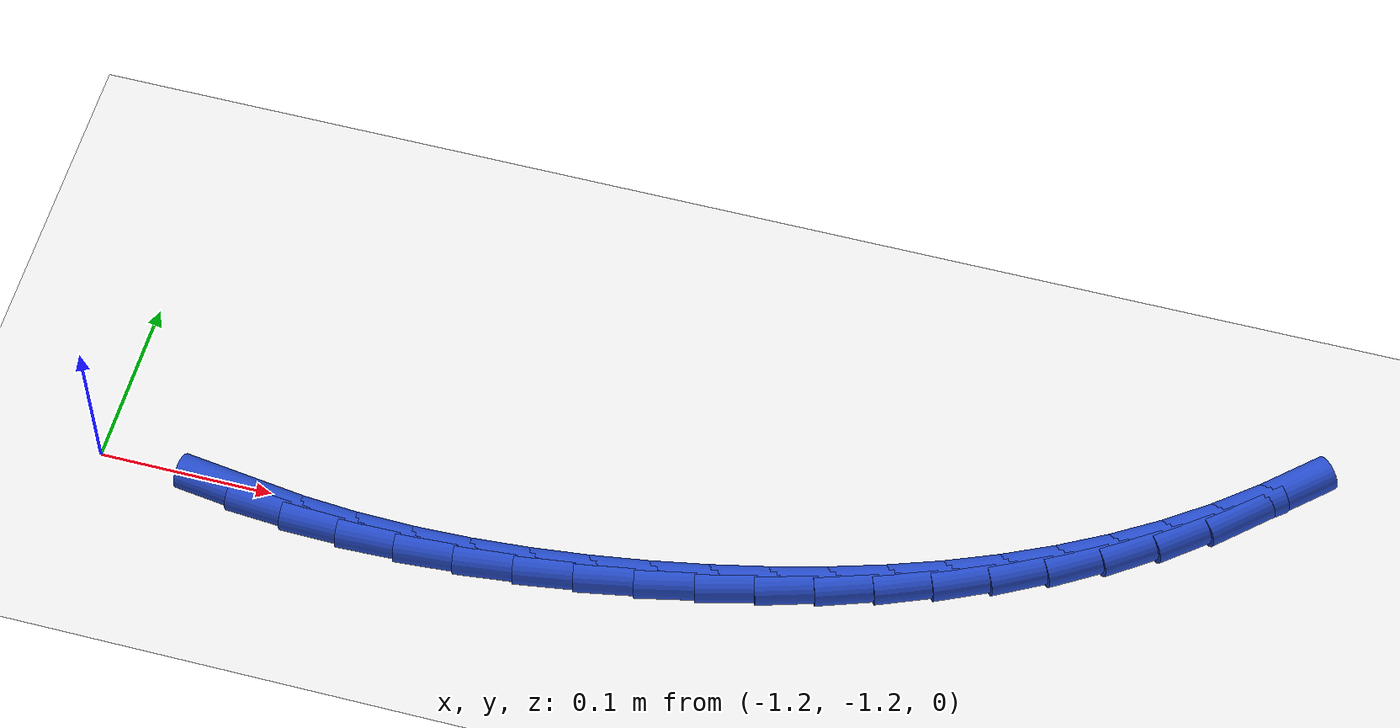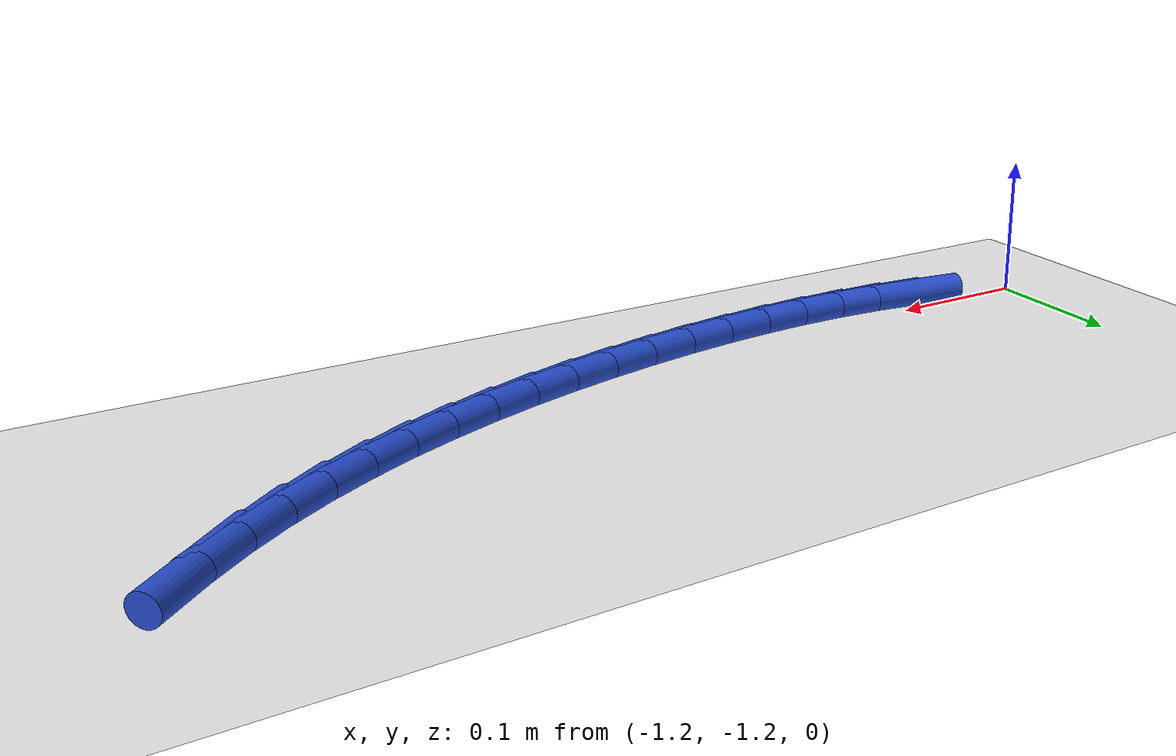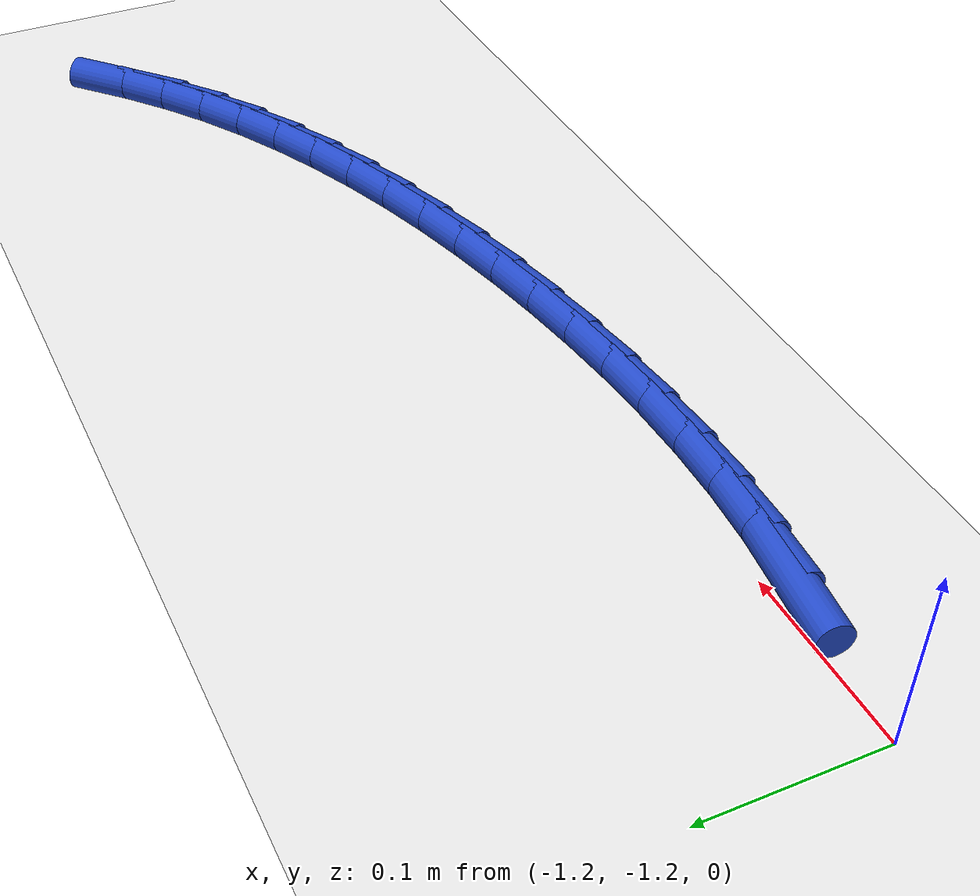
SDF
<sdf version="1.6">
 <world name="default">
  <model name="ground_plane">
   <static>1</static>
   <link name="link">
    <collision name="collision">
     <geometry><plane><normal>0 0 1</normal><size>100 100</size></plane></geometry>
     <surface><friction><ode><mu>100</mu><mu2>50</mu2></ode></friction></surface>
    </collision>
    <visual name="visual">
     <cast_shadows>0</cast_shadows>
     <geometry><plane><normal>0 0 1</normal><size>100 100</size></plane></geometry>
     <material>
      <script><uri>file://media/materials/scripts/gazebo.material</uri><name>Gazebo/WhiteGlow</name></script>
     </material>
    </visual>
   </link>
  </model>
  <model name="line">
   <link name="link_173">
    <pose>-1.1109712731652908 -1.2091608796630064 0.01 0 1.57 -0.13212799474416353</pose>
    <collision name="collision">
     <geometry><cylinder><radius>0.01</radius><length>0.08</length></cylinder></geometry>
    </collision>
    <visual name="visual">
     <material>
      <script><name>Gazebo/Blue</name><uri>file://media/materials/scripts/gazebo.material</uri></script>
     </material>
     <geometry><cylinder><radius>0.01</radius><length>0.08</length></cylinder></geometry>
    </visual>
   </link>
   <link name="link_174">
    <pose>-1.0792347272307246 -1.2133787393115467 0.01 0 1.57 -0.07145513480699484</pose>
    <collision name="collision">
     <geometry><cylinder><radius>0.01</radius><length>0.08</length></cylinder></geometry>
    </collision>
    <visual name="visual">
     <material>
      <script><name>Gazebo/Blue</name><uri>file://media/materials/scripts/gazebo.material</uri></script>
     </material>
     <geometry><cylinder><radius>0.01</radius><length>0.08</length></cylinder></geometry>
    </visual>
   </link>
   <link name="link_175">
    <pose>-1.046898232095288 -1.2156932885085892 0.01 0 1.57 -0.016760493738182895</pose>
    <collision name="collision">
     <geometry><cylinder><radius>0.01</radius><length>0.08</length></cylinder></geometry>
    </collision>
    <visual name="visual">
     <material>
      <script><name>Gazebo/Blue</name><uri>file://media/materials/scripts/gazebo.material</uri></script>
     </material>
     <geometry><cylinder><radius>0.01</radius><length>0.08</length></cylinder></geometry>
    </visual>
   </link>
   <link name="link_176">
    <pose>-1.014122228807933 -1.2162426819515437 0.01 0 1.57 0.03258883098514801</pose>
    <collision name="collision">
     <geometry><cylinder><radius>0.01</radius><length>0.08</length></cylinder></geometry>
    </collision>
    <visual name="visual">
     <material>
      <script><name>Gazebo/Blue</name><uri>file://media/materials/scripts/gazebo.material</uri></script>
     </material>
     <geometry><cylinder><radius>0.01</radius><length>0.08</length></cylinder></geometry>
    </visual>
   </link>
   <link name="link_177">
    <pose>-0.9810671584176099 -1.215165074337823 0.01 0 1.57 0.07721032936828001</pose>
    <collision name="collision">
     <geometry><cylinder><radius>0.01</radius><length>0.08</length></cylinder></geometry>
    </collision>
    <visual name="visual">
     <material>
      <script><name>Gazebo/Blue</name><uri>file://media/materials/scripts/gazebo.material</uri></script>
     </material>
     <geometry><cylinder><radius>0.01</radius><length>0.08</length></cylinder></geometry>
    </visual>
   </link>
   <link name="link_178">
    <pose>-0.9478934619732704 -1.2125986203648393 0.01 0 1.57 0.11768259585653074</pose>
    <collision name="collision">
     <geometry><cylinder><radius>0.01</radius><length>0.08</length></cylinder></geometry>
    </collision>
    <visual name="visual">
     <material>
      <script><name>Gazebo/Blue</name><uri>file://media/materials/scripts/gazebo.material</uri></script>
     </material>
     <geometry><cylinder><radius>0.01</radius><length>0.08</length></cylinder></geometry>
    </visual>
   </link>
   <link name="link_179">
    <pose>-0.9147615805238638 -1.2086814747300032 0.01 0 1.57 0.15453511003095935</pose>
    <collision name="collision">
     <geometry><cylinder><radius>0.01</radius><length>0.08</length></cylinder></geometry>
    </collision>
    <visual name="visual">
     <material>
      <script><name>Gazebo/Blue</name><uri>file://media/materials/scripts/gazebo.material</uri></script>
     </material>
     <geometry><cylinder><radius>0.01</radius><length>0.08</length></cylinder></geometry>
    </visual>
   </link>
   <link name="link_180">
    <pose>-0.8818319551183431 -1.203551792130728 0.01 0 1.57 0.18858449414690379</pose>
    <collision name="collision">
     <geometry><cylinder><radius>0.01</radius><length>0.08</length></cylinder></geometry>
    </collision>
    <visual name="visual">
     <material>
      <script><name>Gazebo/Blue</name><uri>file://media/materials/scripts/gazebo.material</uri></script>
     </material>
     <geometry><cylinder><radius>0.01</radius><length>0.08</length></cylinder></geometry>
    </visual>
   </link>
   <link name="link_181">
    <pose>-0.8492606017614037 -1.1973354719853402 0.01 0 1.57 0.22348158316374375</pose>
    <collision name="collision">
     <geometry><cylinder><radius>0.01</radius><length>0.08</length></cylinder></geometry>
    </collision>
    <visual name="visual">
     <material>
      <script><name>Gazebo/Blue</name><uri>file://media/materials/scripts/gazebo.material</uri></script>
     </material>
     <geometry><cylinder><radius>0.01</radius><length>0.08</length></cylinder></geometry>
    </visual>
   </link>
   <link name="link_182">
    <pose>-0.8171607372085686 -1.190039880040427 0.01 0 1.57 0.2612982912719631</pose>
    <collision name="collision">
     <geometry><cylinder><radius>0.01</radius><length>0.08</length></cylinder></geometry>
    </collision>
    <visual name="visual">
     <material>
      <script><name>Gazebo/Blue</name><uri>file://media/materials/scripts/gazebo.material</uri></script>
     </material>
     <geometry><cylinder><radius>0.01</radius><length>0.08</length></cylinder></geometry>
    </visual>
   </link>
   <link name="link_183">
    <pose>-0.7856215826274112 -1.181605925616343 0.01 0 1.57 0.3022705839648216</pose>
    <collision name="collision">
     <geometry><cylinder><radius>0.01</radius><length>0.08</length></cylinder></geometry>
    </collision>
    <visual name="visual">
     <material>
      <script><name>Gazebo/Blue</name><uri>file://media/materials/scripts/gazebo.material</uri></script>
     </material>
     <geometry><cylinder><radius>0.01</radius><length>0.08</length></cylinder></geometry>
    </visual>
   </link>
   <link name="link_184">
    <pose>-0.7547320943183168 -1.1719737844766442 0.01 0 1.57 0.3466075038071572</pose>
    <collision name="collision">
     <geometry><cylinder><radius>0.01</radius><length>0.08</length></cylinder></geometry>
    </collision>
    <visual name="visual">
     <material>
      <script><name>Gazebo/Blue</name><uri>file://media/materials/scripts/gazebo.material</uri></script>
     </material>
     <geometry><cylinder><radius>0.01</radius><length>0.08</length></cylinder></geometry>
    </visual>
   </link>
   <link name="link_185">
    <pose>-0.7245812285816728 -1.161083632384888 0.01 0 1.57 0.3944990845986333</pose>
    <collision name="collision">
     <geometry><cylinder><radius>0.01</radius><length>0.08</length></cylinder></geometry>
    </collision>
    <visual name="visual">
     <material>
      <script><name>Gazebo/Blue</name><uri>file://media/materials/scripts/gazebo.material</uri></script>
     </material>
     <geometry><cylinder><radius>0.01</radius><length>0.08</length></cylinder></geometry>
    </visual>
   </link>
   <link name="link_186">
    <pose>-0.6952579417178649 -1.1488756451046318 0.01 0 1.57 0.4461000751129853</pose>
    <collision name="collision">
     <geometry><cylinder><radius>0.01</radius><length>0.08</length></cylinder></geometry>
    </collision>
    <visual name="visual">
     <material>
      <script><name>Gazebo/Blue</name><uri>file://media/materials/scripts/gazebo.material</uri></script>
     </material>
     <geometry><cylinder><radius>0.01</radius><length>0.08</length></cylinder></geometry>
    </visual>
   </link>
   <link name="link_187">
    <pose>-0.6668511900272792 -1.1352899983994318 0.01 0 1.57 0.5015095762075042</pose>
    <collision name="collision">
     <geometry><cylinder><radius>0.01</radius><length>0.08</length></cylinder></geometry>
    </collision>
    <visual name="visual">
     <material>
      <script><name>Gazebo/Blue</name><uri>file://media/materials/scripts/gazebo.material</uri></script>
     </material>
     <geometry><cylinder><radius>0.01</radius><length>0.08</length></cylinder></geometry>
    </visual>
   </link>
   <link name="link_188">
    <pose>-0.6394499298103015 -1.120266868032845 0.01 0 1.57 0.5607471691619654</pose>
    <collision name="collision">
     <geometry><cylinder><radius>0.01</radius><length>0.08</length></cylinder></geometry>
    </collision>
    <visual name="visual">
     <material>
      <script><name>Gazebo/Blue</name><uri>file://media/materials/scripts/gazebo.material</uri></script>
     </material>
     <geometry><cylinder><radius>0.01</radius><length>0.08</length></cylinder></geometry>
    </visual>
   </link>
   <link name="link_189">
    <pose>-0.6131431173673192 -1.1037464297684287 0.01 0 1.57 0.6237271996577683</pose>
    <collision name="collision">
     <geometry><cylinder><radius>0.01</radius><length>0.08</length></cylinder></geometry>
    </collision>
    <visual name="visual">
     <material>
      <script><name>Gazebo/Blue</name><uri>file://media/materials/scripts/gazebo.material</uri></script>
     </material>
     <geometry><cylinder><radius>0.01</radius><length>0.08</length></cylinder></geometry>
    </visual>
   </link>
   <link name="link_190">
    <pose>-0.5880197089987178 -1.0856688593697403 0.01 0 1.57 0.6892973235210113</pose>
    <collision name="collision">
     <geometry><cylinder><radius>0.01</radius><length>0.08</length></cylinder></geometry>
    </collision>
    <visual name="visual">
     <material>
      <script><name>Gazebo/Blue</name><uri>file://media/materials/scripts/gazebo.material</uri></script>
     </material>
     <geometry><cylinder><radius>0.01</radius><length>0.08</length></cylinder></geometry>
    </visual>
   </link>
   <link name="link_191">
    <pose>-0.5641485713882268 -1.0659953308676156 0.01 0 1.57 0.7500937165371782</pose>
    <collision name="collision">
     <geometry><cylinder><radius>0.01</radius><length>0.08</length></cylinder></geometry>
    </collision>
    <visual name="visual">
     <material>
      <script><name>Gazebo/Blue</name><uri>file://media/materials/scripts/gazebo.material</uri></script>
     </material>
     <geometry><cylinder><radius>0.01</radius><length>0.08</length></cylinder></geometry>
    </visual>
   </link>
  </model>
 </world>
</sdf>
